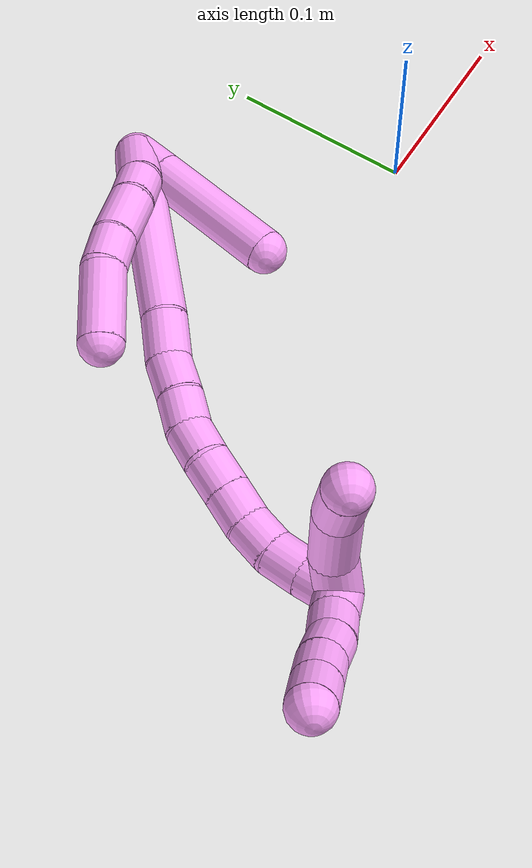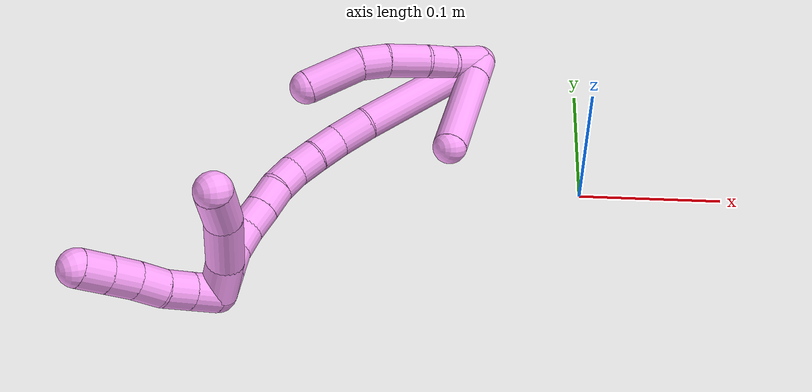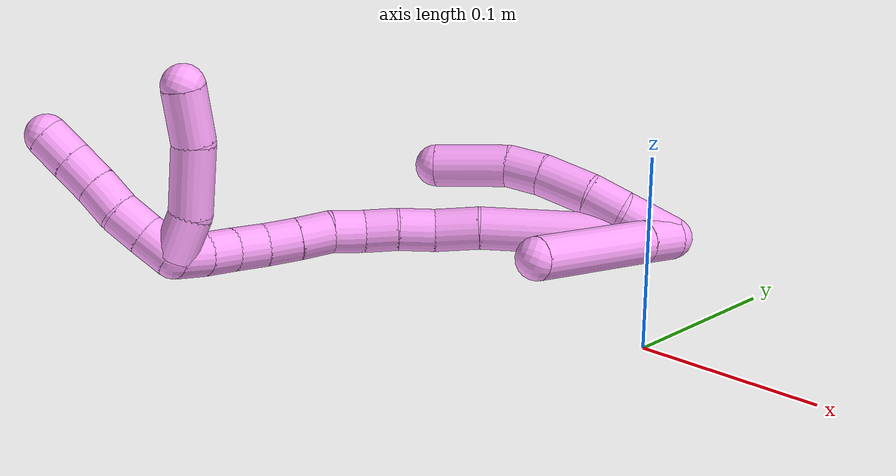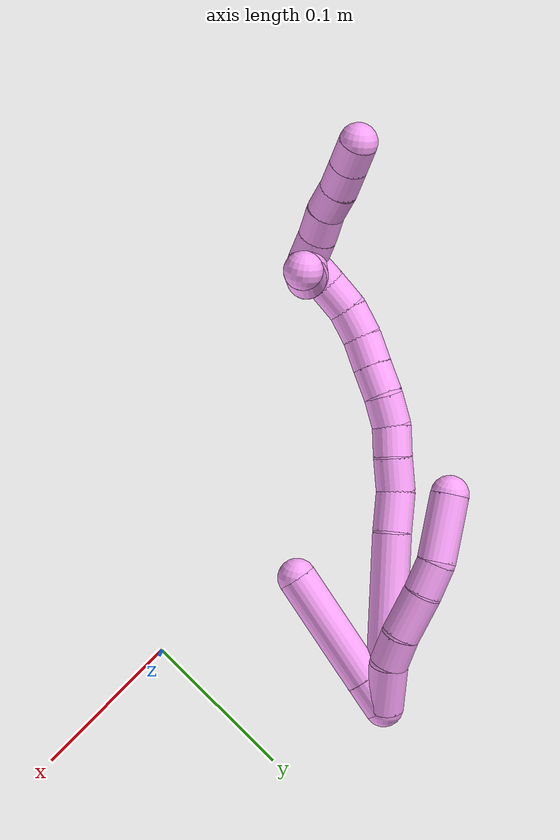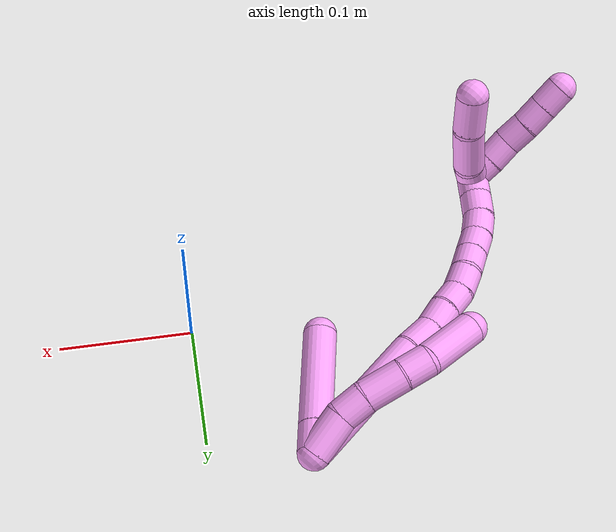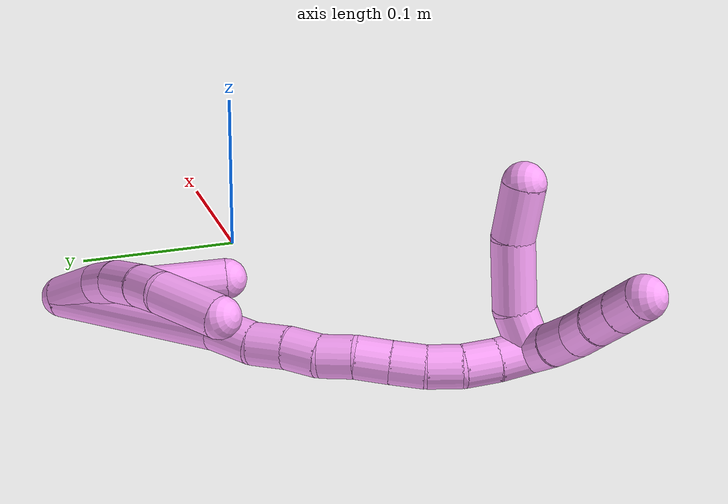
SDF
<sdf version="1.7">
 <world name="default">
  <model name="4">
   <static>0</static>
   <link name="4">
    <collision name="collision-cylinder-e_1_2_8">
     <pose>0.001903 -0.000763 0.016161 0.047169 0.117054 0.002764</pose>
     <geometry><cylinder><radius>0.0125</radius><length>0.032582</length></cylinder></geometry>
     <surface>
      <friction><ode><mu>1.16</mu><mu2>1.16</mu2><slip1>0</slip1><slip2>0</slip2></ode></friction>
      <contact><ode><kp>1e+06</kp><kd>1</kd><max_vel>0</max_vel><min_depth>0.001</min_depth></ode></contact>
     </surface>
    </collision>
    <visual name="visual-cylinder-e_1_2_8">
     <pose>0.001903 -0.000763 0.016161 0.047169 0.117054 0.002764</pose>
     <geometry><cylinder><radius>0.0125</radius><length>0.032582</length></cylinder></geometry>
     <material><ambient>1 0.65098 0.996078 1</ambient></material>
    </visual>
    <collision name="collision-cylinder-e_2_8_9">
     <pose>0.004331 0.000693 0.04277 -0.209276 0.049176 -0.005166</pose>
     <geometry><cylinder><radius>0.0125</radius><length>0.021387</length></cylinder></geometry>
     <surface>
      <friction><ode><mu>1.16</mu><mu2>1.16</mu2><slip1>0</slip1><slip2>0</slip2></ode></friction>
      <contact><ode><kp>1e+06</kp><kd>1</kd><max_vel>0</max_vel><min_depth>0.001</min_depth></ode></contact>
     </surface>
    </collision>
    <visual name="visual-cylinder-e_2_8_9">
     <pose>0.004331 0.000693 0.04277 -0.209276 0.049176 -0.005166</pose>
     <geometry><cylinder><radius>0.0125</radius><length>0.021387</length></cylinder></geometry>
     <material><ambient>1 0.65098 0.996078 1</ambient></material>
    </visual>
    <collision name="collision-cylinder-e_3_9_10">
     <pose>0.003645 0.007799 0.067833 -0.322701 -0.078471 0.012779</pose>
     <geometry><cylinder><radius>0.0125</radius><length>0.030915</length></cylinder></geometry>
     <surface>
      <friction><ode><mu>1.16</mu><mu2>1.16</mu2><slip1>0</slip1><slip2>0</slip2></ode></friction>
      <contact><ode><kp>1e+06</kp><kd>1</kd><max_vel>0</max_vel><min_depth>0.001</min_depth></ode></contact>
     </surface>
    </collision>
    <visual name="visual-cylinder-e_3_9_10">
     <pose>0.003645 0.007799 0.067833 -0.322701 -0.078471 0.012779</pose>
     <geometry><cylinder><radius>0.0125</radius><length>0.030915</length></cylinder></geometry>
     <material><ambient>1 0.65098 0.996078 1</ambient></material>
    </visual>
    <collision name="collision-cylinder-e_4_10_11">
     <pose>0.000274 0.015577 0.092644 -0.276284 -0.20095 0.02803</pose>
     <geometry><cylinder><radius>0.0125</radius><length>0.021632</length></cylinder></geometry>
     <surface>
      <friction><ode><mu>1.16</mu><mu2>1.16</mu2><slip1>0</slip1><slip2>0</slip2></ode></friction>
      <contact><ode><kp>1e+06</kp><kd>1</kd><max_vel>0</max_vel><min_depth>0.001</min_depth></ode></contact>
     </surface>
    </collision>
    <visual name="visual-cylinder-e_4_10_11">
     <pose>0.000274 0.015577 0.092644 -0.276284 -0.20095 0.02803</pose>
     <geometry><cylinder><radius>0.0125</radius><length>0.021632</length></cylinder></geometry>
     <material><ambient>1 0.65098 0.996078 1</ambient></material>
    </visual>
    <collision name="collision-cylinder-e_5_11_6">
     <pose>-0.010575 0.019858 0.122722 -0.069766 -0.411193 0.014555</pose>
     <geometry><cylinder><radius>0.0125</radius><length>0.043483</length></cylinder></geometry>
     <surface>
      <friction><ode><mu>1.16</mu><mu2>1.16</mu2><slip1>0</slip1><slip2>0</slip2></ode></friction>
      <contact><ode><kp>1e+06</kp><kd>1</kd><max_vel>0</max_vel><min_depth>0.001</min_depth></ode></contact>
     </surface>
    </collision>
    <visual name="visual-cylinder-e_5_11_6">
     <pose>-0.010575 0.019858 0.122722 -0.069766 -0.411193 0.014555</pose>
     <geometry><cylinder><radius>0.0125</radius><length>0.043483</length></cylinder></geometry>
     <material><ambient>1 0.65098 0.996078 1</ambient></material>
    </visual>
    <collision name="collision-cylinder-e_1_2_12">
     <pose>-0.002226 -0.007252 0.007824 0.74748 -0.205756 -0.080933</pose>
     <geometry><cylinder><radius>0.0125</radius><length>0.021795</length></cylinder></geometry>
     <surface>
      <friction><ode><mu>1.16</mu><mu2>1.16</mu2><slip1>0</slip1><slip2>0</slip2></ode></friction>
      <contact><ode><kp>1e+06</kp><kd>1</kd><max_vel>0</max_vel><min_depth>0.001</min_depth></ode></contact>
     </surface>
    </collision>
    <visual name="visual-cylinder-e_1_2_12">
     <pose>-0.002226 -0.007252 0.007824 0.74748 -0.205756 -0.080933</pose>
     <geometry><cylinder><radius>0.0125</radius><length>0.021795</length></cylinder></geometry>
     <material><ambient>1 0.65098 0.996078 1</ambient></material>
    </visual>
    <collision name="collision-cylinder-e_2_12_5">
     <pose>-0.013008 -0.040399 0.04367 0.745976 -0.220578 -0.086611</pose>
     <geometry><cylinder><radius>0.0125</radius><length>0.078205</length></cylinder></geometry>
     <surface>
      <friction><ode><mu>1.16</mu><mu2>1.16</mu2><slip1>0</slip1><slip2>0</slip2></ode></friction>
      <contact><ode><kp>1e+06</kp><kd>1</kd><max_vel>0</max_vel><min_depth>0.001</min_depth></ode></contact>
     </surface>
    </collision>
    <visual name="visual-cylinder-e_2_12_5">
     <pose>-0.013008 -0.040399 0.04367 0.745976 -0.220578 -0.086611</pose>
     <geometry><cylinder><radius>0.0125</radius><length>0.078205</length></cylinder></geometry>
     <material><ambient>1 0.65098 0.996078 1</ambient></material>
    </visual>
    <collision name="collision-cylinder-e_1_2_13">
     <pose>-0.017753 -0.005096 0.052625 0.09653 -0.32394 -0.015785</pose>
     <geometry><cylinder><radius>0.0125</radius><length>0.111545</length></cylinder></geometry>
     <surface>
      <friction><ode><mu>1.16</mu><mu2>1.16</mu2><slip1>0</slip1><slip2>0</slip2></ode></friction>
      <contact><ode><kp>1e+06</kp><kd>1</kd><max_vel>0</max_vel><min_depth>0.001</min_depth></ode></contact>
     </surface>
    </collision>
    <visual name="visual-cylinder-e_1_2_13">
     <pose>-0.017753 -0.005096 0.052625 0.09653 -0.32394 -0.015785</pose>
     <geometry><cylinder><radius>0.0125</radius><length>0.111545</length></cylinder></geometry>
     <material><ambient>1 0.65098 0.996078 1</ambient></material>
    </visual>
    <collision name="collision-cylinder-e_2_13_14">
     <pose>-0.041264 -0.010715 0.117104 0.044103 -0.451891 -0.010139</pose>
     <geometry><cylinder><radius>0.0125</radius><length>0.026377</length></cylinder></geometry>
     <surface>
      <friction><ode><mu>1.16</mu><mu2>1.16</mu2><slip1>0</slip1><slip2>0</slip2></ode></friction>
      <contact><ode><kp>1e+06</kp><kd>1</kd><max_vel>0</max_vel><min_depth>0.001</min_depth></ode></contact>
     </surface>
    </collision>
    <visual name="visual-cylinder-e_2_13_14">
     <pose>-0.041264 -0.010715 0.117104 0.044103 -0.451891 -0.010139</pose>
     <geometry><cylinder><radius>0.0125</radius><length>0.026377</length></cylinder></geometry>
     <material><ambient>1 0.65098 0.996078 1</ambient></material>
    </visual>
    <collision name="collision-cylinder-e_3_14_15">
     <pose>-0.050233 -0.013661 0.139168 0.233058 -0.296823 -0.035</pose>
     <geometry><cylinder><radius>0.0125</radius><length>0.021949</length></cylinder></geometry>
     <surface>
      <friction><ode><mu>1.16</mu><mu2>1.16</mu2><slip1>0</slip1><slip2>0</slip2></ode></friction>
      <contact><ode><kp>1e+06</kp><kd>1</kd><max_vel>0</max_vel><min_depth>0.001</min_depth></ode></contact>
     </surface>
    </collision>
    <visual name="visual-cylinder-e_3_14_15">
     <pose>-0.050233 -0.013661 0.139168 0.233058 -0.296823 -0.035</pose>
     <geometry><cylinder><radius>0.0125</radius><length>0.021949</length></cylinder></geometry>
     <material><ambient>1 0.65098 0.996078 1</ambient></material>
    </visual>
    <collision name="collision-cylinder-e_4_15_16">
     <pose>-0.057469 -0.017802 0.158407 0.187945 -0.41295 -0.039478</pose>
     <geometry><cylinder><radius>0.0125</radius><length>0.020066</length></cylinder></geometry>
     <surface>
      <friction><ode><mu>1.16</mu><mu2>1.16</mu2><slip1>0</slip1><slip2>0</slip2></ode></friction>
      <contact><ode><kp>1e+06</kp><kd>1</kd><max_vel>0</max_vel><min_depth>0.001</min_depth></ode></contact>
     </surface>
    </collision>
    <visual name="visual-cylinder-e_4_15_16">
     <pose>-0.057469 -0.017802 0.158407 0.187945 -0.41295 -0.039478</pose>
     <geometry><cylinder><radius>0.0125</radius><length>0.020066</length></cylinder></geometry>
     <material><ambient>1 0.65098 0.996078 1</ambient></material>
    </visual>
    <collision name="collision-cylinder-e_5_16_17">
     <pose>-0.064114 -0.023467 0.176266 0.420405 -0.264355 -0.056717</pose>
     <geometry><cylinder><radius>0.0125</radius><length>0.020044</length></cylinder></geometry>
     <surface>
      <friction><ode><mu>1.16</mu><mu2>1.16</mu2><slip1>0</slip1><slip2>0</slip2></ode></friction>
      <contact><ode><kp>1e+06</kp><kd>1</kd><max_vel>0</max_vel><min_depth>0.001</min_depth></ode></contact>
     </surface>
    </collision>
    <visual name="visual-cylinder-e_5_16_17">
     <pose>-0.064114 -0.023467 0.176266 0.420405 -0.264355 -0.056717</pose>
     <geometry><cylinder><radius>0.0125</radius><length>0.020044</length></cylinder></geometry>
     <material><ambient>1 0.65098 0.996078 1</ambient></material>
    </visual>
    <collision name="collision-cylinder-e_6_17_18">
     <pose>-0.070926 -0.032075 0.192895 0.538676 -0.4325 -0.121138</pose>
     <geometry><cylinder><radius>0.0125</radius><length>0.020009</length></cylinder></geometry>
     <surface>
      <friction><ode><mu>1.16</mu><mu2>1.16</mu2><slip1>0</slip1><slip2>0</slip2></ode></friction>
      <contact><ode><kp>1e+06</kp><kd>1</kd><max_vel>0</max_vel><min_depth>0.001</min_depth></ode></contact>
     </surface>
    </collision>
    <visual name="visual-cylinder-e_6_17_18">
     <pose>-0.070926 -0.032075 0.192895 0.538676 -0.4325 -0.121138</pose>
     <geometry><cylinder><radius>0.0125</radius><length>0.020009</length></cylinder></geometry>
     <material><ambient>1 0.65098 0.996078 1</ambient></material>
    </visual>
    <collision name="collision-cylinder-e_7_18_19">
     <pose>-0.079043 -0.04126 0.2087 0.514316 -0.403134 -0.107373</pose>
     <geometry><cylinder><radius>0.0125</radius><length>0.020002</length></cylinder></geometry>
     <surface>
      <friction><ode><mu>1.16</mu><mu2>1.16</mu2><slip1>0</slip1><slip2>0</slip2></ode></friction>
      <contact><ode><kp>1e+06</kp><kd>1</kd><max_vel>0</max_vel><min_depth>0.001</min_depth></ode></contact>
     </surface>
    </collision>
    <visual name="visual-cylinder-e_7_18_19">
     <pose>-0.079043 -0.04126 0.2087 0.514316 -0.403134 -0.107373</pose>
     <geometry><cylinder><radius>0.0125</radius><length>0.020002</length></cylinder></geometry>
     <material><ambient>1 0.65098 0.996078 1</ambient></material>
    </visual>
    <collision name="collision-cylinder-e_8_19_20">
     <pose>-0.085827 -0.051553 0.224366 0.645624 -0.290062 -0.097638</pose>
     <geometry><cylinder><radius>0.0125</radius><length>0.020007</length></cylinder></geometry>
     <surface>
      <friction><ode><mu>1.16</mu><mu2>1.16</mu2><slip1>0</slip1><slip2>0</slip2></ode></friction>
      <contact><ode><kp>1e+06</kp><kd>1</kd><max_vel>0</max_vel><min_depth>0.001</min_depth></ode></contact>
     </surface>
    </collision>
    <visual name="visual-cylinder-e_8_19_20">
     <pose>-0.085827 -0.051553 0.224366 0.645624 -0.290062 -0.097638</pose>
     <geometry><cylinder><radius>0.0125</radius><length>0.020007</length></cylinder></geometry>
     <material><ambient>1 0.65098 0.996078 1</ambient></material>
    </visual>
    <collision name="collision-cylinder-e_9_20_21">
     <pose>-0.090456 -0.064736 0.238496 0.853095 -0.177688 -0.080919</pose>
     <geometry><cylinder><radius>0.0125</radius><length>0.020001</length></cylinder></geometry>
     <surface>
      <friction><ode><mu>1.16</mu><mu2>1.16</mu2><slip1>0</slip1><slip2>0</slip2></ode></friction>
      <contact><ode><kp>1e+06</kp><kd>1</kd><max_vel>0</max_vel><min_depth>0.001</min_depth></ode></contact>
     </surface>
    </collision>
    <visual name="visual-cylinder-e_9_20_21">
     <pose>-0.090456 -0.064736 0.238496 0.853095 -0.177688 -0.080919</pose>
     <geometry><cylinder><radius>0.0125</radius><length>0.020001</length></cylinder></geometry>
     <material><ambient>1 0.65098 0.996078 1</ambient></material>
    </visual>
    <collision name="collision-cylinder-e_10_21_1">
     <pose>-0.093124 -0.079703 0.251462 0.860617 -0.090118 -0.041386</pose>
     <geometry><cylinder><radius>0.0125</radius><length>0.02</length></cylinder></geometry>
     <surface>
      <friction><ode><mu>1.16</mu><mu2>1.16</mu2><slip1>0</slip1><slip2>0</slip2></ode></friction>
      <contact><ode><kp>1e+06</kp><kd>1</kd><max_vel>0</max_vel><min_depth>0.001</min_depth></ode></contact>
     </surface>
    </collision>
    <visual name="visual-cylinder-e_10_21_1">
     <pose>-0.093124 -0.079703 0.251462 0.860617 -0.090118 -0.041386</pose>
     <geometry><cylinder><radius>0.0125</radius><length>0.02</length></cylinder></geometry>
     <material><ambient>1 0.65098 0.996078 1</ambient></material>
    </visual>
    <collision name="collision-cylinder-e_1_1_22">
     <pose>-0.092002 -0.085097 0.267508 -0.222177 0.203608 -0.02279</pose>
     <geometry><cylinder><radius>0.0125</radius><length>0.02</length></cylinder></geometry>
     <surface>
      <friction><ode><mu>1.16</mu><mu2>1.16</mu2><slip1>0</slip1><slip2>0</slip2></ode></friction>
      <contact><ode><kp>1e+06</kp><kd>1</kd><max_vel>0</max_vel><min_depth>0.001</min_depth></ode></contact>
     </surface>
    </collision>
    <visual name="visual-cylinder-e_1_1_22">
     <pose>-0.092002 -0.085097 0.267508 -0.222177 0.203608 -0.02279</pose>
     <geometry><cylinder><radius>0.0125</radius><length>0.02</length></cylinder></geometry>
     <material><ambient>1 0.65098 0.996078 1</ambient></material>
    </visual>
    <collision name="collision-cylinder-e_2_22_23">
     <pose>-0.087344 -0.08153 0.286604 -0.146553 0.266766 -0.019699</pose>
     <geometry><cylinder><radius>0.0125</radius><length>0.02</length></cylinder></geometry>
     <surface>
      <friction><ode><mu>1.16</mu><mu2>1.16</mu2><slip1>0</slip1><slip2>0</slip2></ode></friction>
      <contact><ode><kp>1e+06</kp><kd>1</kd><max_vel>0</max_vel><min_depth>0.001</min_depth></ode></contact>
     </surface>
    </collision>
    <visual name="visual-cylinder-e_2_22_23">
     <pose>-0.087344 -0.08153 0.286604 -0.146553 0.266766 -0.019699</pose>
     <geometry><cylinder><radius>0.0125</radius><length>0.02</length></cylinder></geometry>
     <material><ambient>1 0.65098 0.996078 1</ambient></material>
    </visual>
    <collision name="collision-cylinder-e_3_23_24">
     <pose>-0.081186 -0.077255 0.305056 -0.311297 0.359894 -0.057076</pose>
     <geometry><cylinder><radius>0.0125</radius><length>0.02</length></cylinder></geometry>
     <surface>
      <friction><ode><mu>1.16</mu><mu2>1.16</mu2><slip1>0</slip1><slip2>0</slip2></ode></friction>
      <contact><ode><kp>1e+06</kp><kd>1</kd><max_vel>0</max_vel><min_depth>0.001</min_depth></ode></contact>
     </surface>
    </collision>
    <visual name="visual-cylinder-e_3_23_24">
     <pose>-0.081186 -0.077255 0.305056 -0.311297 0.359894 -0.057076</pose>
     <geometry><cylinder><radius>0.0125</radius><length>0.02</length></cylinder></geometry>
     <material><ambient>1 0.65098 0.996078 1</ambient></material>
    </visual>
    <collision name="collision-cylinder-e_4_24_25">
     <pose>-0.074232 -0.072497 0.323166 -0.202748 0.350308 -0.035999</pose>
     <geometry><cylinder><radius>0.0125</radius><length>0.02</length></cylinder></geometry>
     <surface>
      <friction><ode><mu>1.16</mu><mu2>1.16</mu2><slip1>0</slip1><slip2>0</slip2></ode></friction>
      <contact><ode><kp>1e+06</kp><kd>1</kd><max_vel>0</max_vel><min_depth>0.001</min_depth></ode></contact>
     </surface>
    </collision>
    <visual name="visual-cylinder-e_4_24_25">
     <pose>-0.074232 -0.072497 0.323166 -0.202748 0.350308 -0.035999</pose>
     <geometry><cylinder><radius>0.0125</radius><length>0.02</length></cylinder></geometry>
     <material><ambient>1 0.65098 0.996078 1</ambient></material>
    </visual>
    <collision name="collision-cylinder-e_5_25_4">
     <pose>-0.067381 -0.068786 0.341586 -0.194818 0.34891 -0.034442</pose>
     <geometry><cylinder><radius>0.0125</radius><length>0.02</length></cylinder></geometry>
     <surface>
      <friction><ode><mu>1.16</mu><mu2>1.16</mu2><slip1>0</slip1><slip2>0</slip2></ode></friction>
      <contact><ode><kp>1e+06</kp><kd>1</kd><max_vel>0</max_vel><min_depth>0.001</min_depth></ode></contact>
     </surface>
    </collision>
    <visual name="visual-cylinder-e_5_25_4">
     <pose>-0.067381 -0.068786 0.341586 -0.194818 0.34891 -0.034442</pose>
     <geometry><cylinder><radius>0.0125</radius><length>0.02</length></cylinder></geometry>
     <material><ambient>1 0.65098 0.996078 1</ambient></material>
    </visual>
    <collision name="collision-cylinder-e_1_1_26">
     <pose>-0.080905 -0.086276 0.257711 -1.81579 1.49403 -1.74061</pose>
     <geometry><cylinder><radius>0.0125</radius><length>0.026315</length></cylinder></geometry>
     <surface>
      <friction><ode><mu>1.16</mu><mu2>1.16</mu2><slip1>0</slip1><slip2>0</slip2></ode></friction>
      <contact><ode><kp>1e+06</kp><kd>1</kd><max_vel>0</max_vel><min_depth>0.001</min_depth></ode></contact>
     </surface>
    </collision>
    <visual name="visual-cylinder-e_1_1_26">
     <pose>-0.080905 -0.086276 0.257711 -1.81579 1.49403 -1.74061</pose>
     <geometry><cylinder><radius>0.0125</radius><length>0.026315</length></cylinder></geometry>
     <material><ambient>1 0.65098 0.996078 1</ambient></material>
    </visual>
    <collision name="collision-cylinder-e_2_26_27">
     <pose>-0.047897 -0.086383 0.26315 0.188899 1.28768 0.141959</pose>
     <geometry><cylinder><radius>0.0125</radius><length>0.041429</length></cylinder></geometry>
     <surface>
      <friction><ode><mu>1.16</mu><mu2>1.16</mu2><slip1>0</slip1><slip2>0</slip2></ode></friction>
      <contact><ode><kp>1e+06</kp><kd>1</kd><max_vel>0</max_vel><min_depth>0.001</min_depth></ode></contact>
     </surface>
    </collision>
    <visual name="visual-cylinder-e_2_26_27">
     <pose>-0.047897 -0.086383 0.26315 0.188899 1.28768 0.141959</pose>
     <geometry><cylinder><radius>0.0125</radius><length>0.041429</length></cylinder></geometry>
     <material><ambient>1 0.65098 0.996078 1</ambient></material>
    </visual>
    <collision name="collision-cylinder-e_3_27_3">
     <pose>-0.013836 -0.08924 0.276329 0.231838 1.07295 0.138263</pose>
     <geometry><cylinder><radius>0.0125</radius><length>0.032256</length></cylinder></geometry>
     <surface>
      <friction><ode><mu>1.16</mu><mu2>1.16</mu2><slip1>0</slip1><slip2>0</slip2></ode></friction>
      <contact><ode><kp>1e+06</kp><kd>1</kd><max_vel>0</max_vel><min_depth>0.001</min_depth></ode></contact>
     </surface>
    </collision>
    <visual name="visual-cylinder-e_3_27_3">
     <pose>-0.013836 -0.08924 0.276329 0.231838 1.07295 0.138263</pose>
     <geometry><cylinder><radius>0.0125</radius><length>0.032256</length></cylinder></geometry>
     <material><ambient>1 0.65098 0.996078 1</ambient></material>
    </visual>
    <collision name="collision-sphere-3">
     <pose>0.000334 -0.091009 0.283824 0 -0 0</pose>
     <geometry><sphere><radius>0.0125</radius></sphere></geometry>
     <surface>
      <friction><ode><mu>1.16</mu><mu2>1.16</mu2><slip1>0</slip1><slip2>0</slip2></ode></friction>
      <contact><ode><kp>1e+06</kp><kd>1</kd><max_vel>0</max_vel><min_depth>0.001</min_depth></ode></contact>
     </surface>
    </collision>
    <visual name="visual-sphere-3">
     <pose>0.000334 -0.091009 0.283824 0 -0 0</pose>
     <geometry><sphere><radius>0.0125</radius></sphere></geometry>
     <material><ambient>1 0.65098 0.996078 1</ambient></material>
    </visual>
    <collision name="collision-sphere-27">
     <pose>-0.028007 -0.08747 0.268833 0 -0 0</pose>
     <geometry><sphere><radius>0.0125</radius></sphere></geometry>
     <surface>
      <friction><ode><mu>1.16</mu><mu2>1.16</mu2><slip1>0</slip1><slip2>0</slip2></ode></friction>
      <contact><ode><kp>1e+06</kp><kd>1</kd><max_vel>0</max_vel><min_depth>0.001</min_depth></ode></contact>
     </surface>
    </collision>
    <visual name="visual-sphere-27">
     <pose>-0.028007 -0.08747 0.268833 0 -0 0</pose>
     <geometry><sphere><radius>0.0125</radius></sphere></geometry>
     <material><ambient>1 0.65098 0.996078 1</ambient></material>
    </visual>
    <collision name="collision-sphere-26">
     <pose>-0.067786 -0.085297 0.257466 0 -0 0</pose>
     <geometry><sphere><radius>0.0125</radius></sphere></geometry>
     <surface>
      <friction><ode><mu>1.16</mu><mu2>1.16</mu2><slip1>0</slip1><slip2>0</slip2></ode></friction>
      <contact><ode><kp>1e+06</kp><kd>1</kd><max_vel>0</max_vel><min_depth>0.001</min_depth></ode></contact>
     </surface>
    </collision>
    <visual name="visual-sphere-26">
     <pose>-0.067786 -0.085297 0.257466 0 -0 0</pose>
     <geometry><sphere><radius>0.0125</radius></sphere></geometry>
     <material><ambient>1 0.65098 0.996078 1</ambient></material>
    </visual>
    <collision name="collision-sphere-4">
     <pose>-0.063963 -0.066967 0.350806 0 -0 0</pose>
     <geometry><sphere><radius>0.0125</radius></sphere></geometry>
     <surface>
      <friction><ode><mu>1.16</mu><mu2>1.16</mu2><slip1>0</slip1><slip2>0</slip2></ode></friction>
      <contact><ode><kp>1e+06</kp><kd>1</kd><max_vel>0</max_vel><min_depth>0.001</min_depth></ode></contact>
     </surface>
    </collision>
    <visual name="visual-sphere-4">
     <pose>-0.063963 -0.066967 0.350806 0 -0 0</pose>
     <geometry><sphere><radius>0.0125</radius></sphere></geometry>
     <material><ambient>1 0.65098 0.996078 1</ambient></material>
    </visual>
    <collision name="collision-sphere-25">
     <pose>-0.0708 -0.070605 0.332366 0 -0 0</pose>
     <geometry><sphere><radius>0.0125</radius></sphere></geometry>
     <surface>
      <friction><ode><mu>1.16</mu><mu2>1.16</mu2><slip1>0</slip1><slip2>0</slip2></ode></friction>
      <contact><ode><kp>1e+06</kp><kd>1</kd><max_vel>0</max_vel><min_depth>0.001</min_depth></ode></contact>
     </surface>
    </collision>
    <visual name="visual-sphere-25">
     <pose>-0.0708 -0.070605 0.332366 0 -0 0</pose>
     <geometry><sphere><radius>0.0125</radius></sphere></geometry>
     <material><ambient>1 0.65098 0.996078 1</ambient></material>
    </visual>
    <collision name="collision-sphere-24">
     <pose>-0.077664 -0.074388 0.313966 0 -0 0</pose>
     <geometry><sphere><radius>0.0125</radius></sphere></geometry>
     <surface>
      <friction><ode><mu>1.16</mu><mu2>1.16</mu2><slip1>0</slip1><slip2>0</slip2></ode></friction>
      <contact><ode><kp>1e+06</kp><kd>1</kd><max_vel>0</max_vel><min_depth>0.001</min_depth></ode></contact>
     </surface>
    </collision>
    <visual name="visual-sphere-24">
     <pose>-0.077664 -0.074388 0.313966 0 -0 0</pose>
     <geometry><sphere><radius>0.0125</radius></sphere></geometry>
     <material><ambient>1 0.65098 0.996078 1</ambient></material>
    </visual>
    <collision name="collision-sphere-23">
     <pose>-0.084707 -0.080121 0.296147 0 -0 0</pose>
     <geometry><sphere><radius>0.0125</radius></sphere></geometry>
     <surface>
      <friction><ode><mu>1.16</mu><mu2>1.16</mu2><slip1>0</slip1><slip2>0</slip2></ode></friction>
      <contact><ode><kp>1e+06</kp><kd>1</kd><max_vel>0</max_vel><min_depth>0.001</min_depth></ode></contact>
     </surface>
    </collision>
    <visual name="visual-sphere-23">
     <pose>-0.084707 -0.080121 0.296147 0 -0 0</pose>
     <geometry><sphere><radius>0.0125</radius></sphere></geometry>
     <material><ambient>1 0.65098 0.996078 1</ambient></material>
    </visual>
    <collision name="collision-sphere-22">
     <pose>-0.08998 -0.082939 0.277061 0 -0 0</pose>
     <geometry><sphere><radius>0.0125</radius></sphere></geometry>
     <surface>
      <friction><ode><mu>1.16</mu><mu2>1.16</mu2><slip1>0</slip1><slip2>0</slip2></ode></friction>
      <contact><ode><kp>1e+06</kp><kd>1</kd><max_vel>0</max_vel><min_depth>0.001</min_depth></ode></contact>
     </surface>
    </collision>
    <visual name="visual-sphere-22">
     <pose>-0.08998 -0.082939 0.277061 0 -0 0</pose>
     <geometry><sphere><radius>0.0125</radius></sphere></geometry>
     <material><ambient>1 0.65098 0.996078 1</ambient></material>
    </visual>
    <collision name="collision-sphere-1">
     <pose>-0.094024 -0.087255 0.257956 0 -0 0</pose>
     <geometry><sphere><radius>0.0125</radius></sphere></geometry>
     <surface>
      <friction><ode><mu>1.16</mu><mu2>1.16</mu2><slip1>0</slip1><slip2>0</slip2></ode></friction>
      <contact><ode><kp>1e+06</kp><kd>1</kd><max_vel>0</max_vel><min_depth>0.001</min_depth></ode></contact>
     </surface>
    </collision>
    <visual name="visual-sphere-1">
     <pose>-0.094024 -0.087255 0.257956 0 -0 0</pose>
     <geometry><sphere><radius>0.0125</radius></sphere></geometry>
     <material><ambient>1 0.65098 0.996078 1</ambient></material>
    </visual>
    <collision name="collision-sphere-21">
     <pose>-0.092224 -0.072151 0.244969 0 -0 0</pose>
     <geometry><sphere><radius>0.0125</radius></sphere></geometry>
     <surface>
      <friction><ode><mu>1.16</mu><mu2>1.16</mu2><slip1>0</slip1><slip2>0</slip2></ode></friction>
      <contact><ode><kp>1e+06</kp><kd>1</kd><max_vel>0</max_vel><min_depth>0.001</min_depth></ode></contact>
     </surface>
    </collision>
    <visual name="visual-sphere-21">
     <pose>-0.092224 -0.072151 0.244969 0 -0 0</pose>
     <geometry><sphere><radius>0.0125</radius></sphere></geometry>
     <material><ambient>1 0.65098 0.996078 1</ambient></material>
    </visual>
    <collision name="collision-sphere-6">
     <pose>-0.019265 0.021247 0.142602 0 -0 0</pose>
     <geometry><sphere><radius>0.0125</radius></sphere></geometry>
     <surface>
      <friction><ode><mu>1.16</mu><mu2>1.16</mu2><slip1>0</slip1><slip2>0</slip2></ode></friction>
      <contact><ode><kp>1e+06</kp><kd>1</kd><max_vel>0</max_vel><min_depth>0.001</min_depth></ode></contact>
     </surface>
    </collision>
    <visual name="visual-sphere-6">
     <pose>-0.019265 0.021247 0.142602 0 -0 0</pose>
     <geometry><sphere><radius>0.0125</radius></sphere></geometry>
     <material><ambient>1 0.65098 0.996078 1</ambient></material>
    </visual>
    <collision name="collision-sphere-11">
     <pose>-0.001885 0.018468 0.102841 0 -0 0</pose>
     <geometry><sphere><radius>0.0125</radius></sphere></geometry>
     <surface>
      <friction><ode><mu>1.16</mu><mu2>1.16</mu2><slip1>0</slip1><slip2>0</slip2></ode></friction>
      <contact><ode><kp>1e+06</kp><kd>1</kd><max_vel>0</max_vel><min_depth>0.001</min_depth></ode></contact>
     </surface>
    </collision>
    <visual name="visual-sphere-11">
     <pose>-0.001885 0.018468 0.102841 0 -0 0</pose>
     <geometry><sphere><radius>0.0125</radius></sphere></geometry>
     <material><ambient>1 0.65098 0.996078 1</ambient></material>
    </visual>
    <collision name="collision-sphere-10">
     <pose>0.002433 0.012686 0.082447 0 -0 0</pose>
     <geometry><sphere><radius>0.0125</radius></sphere></geometry>
     <surface>
      <friction><ode><mu>1.16</mu><mu2>1.16</mu2><slip1>0</slip1><slip2>0</slip2></ode></friction>
      <contact><ode><kp>1e+06</kp><kd>1</kd><max_vel>0</max_vel><min_depth>0.001</min_depth></ode></contact>
     </surface>
    </collision>
    <visual name="visual-sphere-10">
     <pose>0.002433 0.012686 0.082447 0 -0 0</pose>
     <geometry><sphere><radius>0.0125</radius></sphere></geometry>
     <material><ambient>1 0.65098 0.996078 1</ambient></material>
    </visual>
    <collision name="collision-sphere-9">
     <pose>0.004856 0.002912 0.053218 0 -0 0</pose>
     <geometry><sphere><radius>0.0125</radius></sphere></geometry>
     <surface>
      <friction><ode><mu>1.16</mu><mu2>1.16</mu2><slip1>0</slip1><slip2>0</slip2></ode></friction>
      <contact><ode><kp>1e+06</kp><kd>1</kd><max_vel>0</max_vel><min_depth>0.001</min_depth></ode></contact>
     </surface>
    </collision>
    <visual name="visual-sphere-9">
     <pose>0.004856 0.002912 0.053218 0 -0 0</pose>
     <geometry><sphere><radius>0.0125</radius></sphere></geometry>
     <material><ambient>1 0.65098 0.996078 1</ambient></material>
    </visual>
    <collision name="collision-sphere-2">
     <geometry><sphere><radius>0.0125</radius></sphere></geometry>
     <surface>
      <friction><ode><mu>1.16</mu><mu2>1.16</mu2><slip1>0</slip1><slip2>0</slip2></ode></friction>
      <contact><ode><kp>1e+06</kp><kd>1</kd><max_vel>0</max_vel><min_depth>0.001</min_depth></ode></contact>
     </surface>
    </collision>
    <visual name="visual-sphere-2">
     <geometry><sphere><radius>0.0125</radius></sphere></geometry>
     <material><ambient>1 0.65098 0.996078 1</ambient></material>
    </visual>
    <collision name="collision-sphere-19">
     <pose>-0.082966 -0.045786 0.21671 0 -0 0</pose>
     <geometry><sphere><radius>0.0125</radius></sphere></geometry>
     <surface>
      <friction><ode><mu>1.16</mu><mu2>1.16</mu2><slip1>0</slip1><slip2>0</slip2></ode></friction>
      <contact><ode><kp>1e+06</kp><kd>1</kd><max_vel>0</max_vel><min_depth>0.001</min_depth></ode></contact>
     </surface>
    </collision>
    <visual name="visual-sphere-19">
     <pose>-0.082966 -0.045786 0.21671 0 -0 0</pose>
     <geometry><sphere><radius>0.0125</radius></sphere></geometry>
     <material><ambient>1 0.65098 0.996078 1</ambient></material>
    </visual>
    <collision name="collision-sphere-8">
     <pose>0.003805 -0.001526 0.032323 0 -0 0</pose>
     <geometry><sphere><radius>0.0125</radius></sphere></geometry>
     <surface>
      <friction><ode><mu>1.16</mu><mu2>1.16</mu2><slip1>0</slip1><slip2>0</slip2></ode></friction>
      <contact><ode><kp>1e+06</kp><kd>1</kd><max_vel>0</max_vel><min_depth>0.001</min_depth></ode></contact>
     </surface>
    </collision>
    <visual name="visual-sphere-8">
     <pose>0.003805 -0.001526 0.032323 0 -0 0</pose>
     <geometry><sphere><radius>0.0125</radius></sphere></geometry>
     <material><ambient>1 0.65098 0.996078 1</ambient></material>
    </visual>
    <collision name="collision-sphere-12">
     <pose>-0.004453 -0.014504 0.015648 0 -0 0</pose>
     <geometry><sphere><radius>0.0125</radius></sphere></geometry>
     <surface>
      <friction><ode><mu>1.16</mu><mu2>1.16</mu2><slip1>0</slip1><slip2>0</slip2></ode></friction>
      <contact><ode><kp>1e+06</kp><kd>1</kd><max_vel>0</max_vel><min_depth>0.001</min_depth></ode></contact>
     </surface>
    </collision>
    <visual name="visual-sphere-12">
     <pose>-0.004453 -0.014504 0.015648 0 -0 0</pose>
     <geometry><sphere><radius>0.0125</radius></sphere></geometry>
     <material><ambient>1 0.65098 0.996078 1</ambient></material>
    </visual>
    <collision name="collision-sphere-5">
     <pose>-0.021564 -0.066294 0.071692 0 -0 0</pose>
     <geometry><sphere><radius>0.0125</radius></sphere></geometry>
     <surface>
      <friction><ode><mu>1.16</mu><mu2>1.16</mu2><slip1>0</slip1><slip2>0</slip2></ode></friction>
      <contact><ode><kp>1e+06</kp><kd>1</kd><max_vel>0</max_vel><min_depth>0.001</min_depth></ode></contact>
     </surface>
    </collision>
    <visual name="visual-sphere-5">
     <pose>-0.021564 -0.066294 0.071692 0 -0 0</pose>
     <geometry><sphere><radius>0.0125</radius></sphere></geometry>
     <material><ambient>1 0.65098 0.996078 1</ambient></material>
    </visual>
    <collision name="collision-sphere-13">
     <pose>-0.035505 -0.010191 0.105251 0 -0 0</pose>
     <geometry><sphere><radius>0.0125</radius></sphere></geometry>
     <surface>
      <friction><ode><mu>1.16</mu><mu2>1.16</mu2><slip1>0</slip1><slip2>0</slip2></ode></friction>
      <contact><ode><kp>1e+06</kp><kd>1</kd><max_vel>0</max_vel><min_depth>0.001</min_depth></ode></contact>
     </surface>
    </collision>
    <visual name="visual-sphere-13">
     <pose>-0.035505 -0.010191 0.105251 0 -0 0</pose>
     <geometry><sphere><radius>0.0125</radius></sphere></geometry>
     <material><ambient>1 0.65098 0.996078 1</ambient></material>
    </visual>
    <collision name="collision-sphere-14">
     <pose>-0.047023 -0.011238 0.128957 0 -0 0</pose>
     <geometry><sphere><radius>0.0125</radius></sphere></geometry>
     <surface>
      <friction><ode><mu>1.16</mu><mu2>1.16</mu2><slip1>0</slip1><slip2>0</slip2></ode></friction>
      <contact><ode><kp>1e+06</kp><kd>1</kd><max_vel>0</max_vel><min_depth>0.001</min_depth></ode></contact>
     </surface>
    </collision>
    <visual name="visual-sphere-14">
     <pose>-0.047023 -0.011238 0.128957 0 -0 0</pose>
     <geometry><sphere><radius>0.0125</radius></sphere></geometry>
     <material><ambient>1 0.65098 0.996078 1</ambient></material>
    </visual>
    <collision name="collision-sphere-15">
     <pose>-0.053443 -0.016085 0.149379 0 -0 0</pose>
     <geometry><sphere><radius>0.0125</radius></sphere></geometry>
     <surface>
      <friction><ode><mu>1.16</mu><mu2>1.16</mu2><slip1>0</slip1><slip2>0</slip2></ode></friction>
      <contact><ode><kp>1e+06</kp><kd>1</kd><max_vel>0</max_vel><min_depth>0.001</min_depth></ode></contact>
     </surface>
    </collision>
    <visual name="visual-sphere-15">
     <pose>-0.053443 -0.016085 0.149379 0 -0 0</pose>
     <geometry><sphere><radius>0.0125</radius></sphere></geometry>
     <material><ambient>1 0.65098 0.996078 1</ambient></material>
    </visual>
    <collision name="collision-sphere-16">
     <pose>-0.061496 -0.019519 0.167435 0 -0 0</pose>
     <geometry><sphere><radius>0.0125</radius></sphere></geometry>
     <surface>
      <friction><ode><mu>1.16</mu><mu2>1.16</mu2><slip1>0</slip1><slip2>0</slip2></ode></friction>
      <contact><ode><kp>1e+06</kp><kd>1</kd><max_vel>0</max_vel><min_depth>0.001</min_depth></ode></contact>
     </surface>
    </collision>
    <visual name="visual-sphere-16">
     <pose>-0.061496 -0.019519 0.167435 0 -0 0</pose>
     <geometry><sphere><radius>0.0125</radius></sphere></geometry>
     <material><ambient>1 0.65098 0.996078 1</ambient></material>
    </visual>
    <collision name="collision-sphere-17">
     <pose>-0.066733 -0.027416 0.185098 0 -0 0</pose>
     <geometry><sphere><radius>0.0125</radius></sphere></geometry>
     <surface>
      <friction><ode><mu>1.16</mu><mu2>1.16</mu2><slip1>0</slip1><slip2>0</slip2></ode></friction>
      <contact><ode><kp>1e+06</kp><kd>1</kd><max_vel>0</max_vel><min_depth>0.001</min_depth></ode></contact>
     </surface>
    </collision>
    <visual name="visual-sphere-17">
     <pose>-0.066733 -0.027416 0.185098 0 -0 0</pose>
     <geometry><sphere><radius>0.0125</radius></sphere></geometry>
     <material><ambient>1 0.65098 0.996078 1</ambient></material>
    </visual>
    <collision name="collision-sphere-18">
     <pose>-0.07512 -0.036735 0.200691 0 -0 0</pose>
     <geometry><sphere><radius>0.0125</radius></sphere></geometry>
     <surface>
      <friction><ode><mu>1.16</mu><mu2>1.16</mu2><slip1>0</slip1><slip2>0</slip2></ode></friction>
      <contact><ode><kp>1e+06</kp><kd>1</kd><max_vel>0</max_vel><min_depth>0.001</min_depth></ode></contact>
     </surface>
    </collision>
    <visual name="visual-sphere-18">
     <pose>-0.07512 -0.036735 0.200691 0 -0 0</pose>
     <geometry><sphere><radius>0.0125</radius></sphere></geometry>
     <material><ambient>1 0.65098 0.996078 1</ambient></material>
    </visual>
    <collision name="collision-sphere-20">
     <pose>-0.088689 -0.057321 0.232022 0 -0 0</pose>
     <geometry><sphere><radius>0.0125</radius></sphere></geometry>
     <surface>
      <friction><ode><mu>1.16</mu><mu2>1.16</mu2><slip1>0</slip1><slip2>0</slip2></ode></friction>
      <contact><ode><kp>1e+06</kp><kd>1</kd><max_vel>0</max_vel><min_depth>0.001</min_depth></ode></contact>
     </surface>
    </collision>
    <visual name="visual-sphere-20">
     <pose>-0.088689 -0.057321 0.232022 0 -0 0</pose>
     <geometry><sphere><radius>0.0125</radius></sphere></geometry>
     <material><ambient>1 0.65098 0.996078 1</ambient></material>
    </visual>
    <inertial>
     <pose>-0.038471 -0.034244 0.150117 0 -0 0</pose>
     <mass>0.75</mass>
     <inertia>
      <ixx>0.000194</ixx>
      <ixy>0</ixy>
      <ixz>0</ixz>
      <iyy>0.000191</iyy>
      <iyz>0</iyz>
      <izz>0.00013</izz>
     </inertia>
    </inertial>
   </link>
   <pose>-0.074296 0.125932 0.010942 -0.058966 -1.20497 0.70282</pose>
  </model>
 </world>
</sdf>
